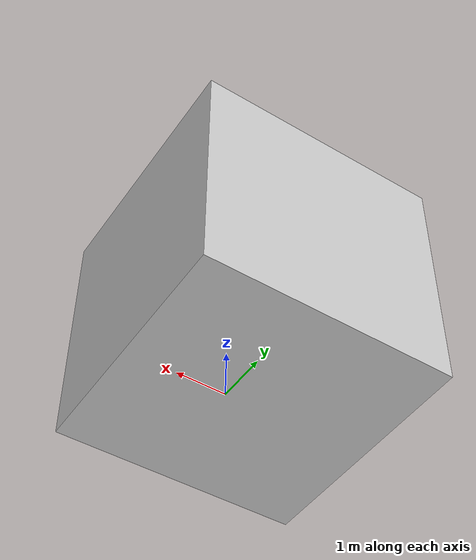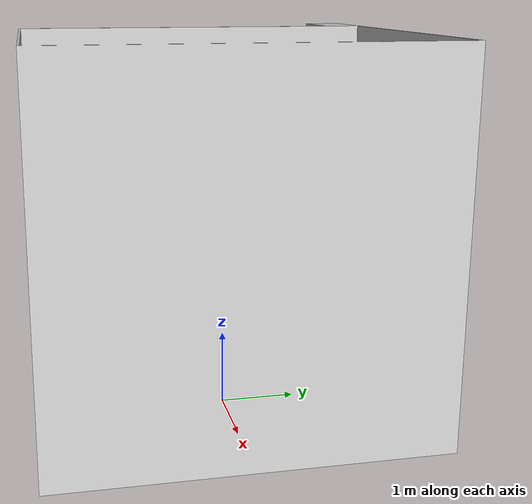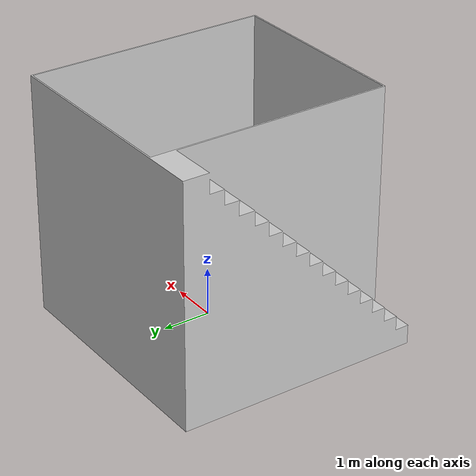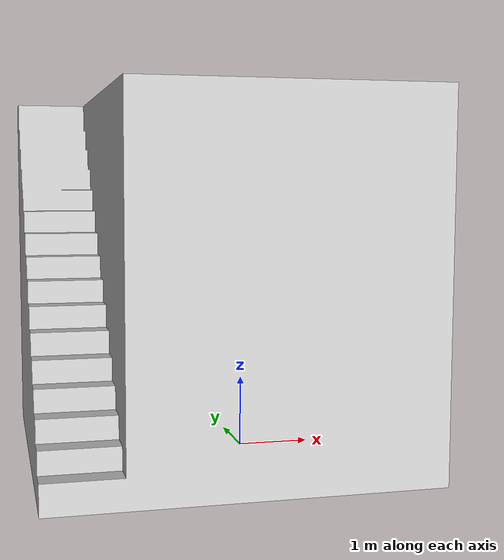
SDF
<?xml version="1.0"?>
<sdf version="1.9">
  <model name="watertank">
    <static>1</static>
    <link name="tank_link">
      <pose>0 0 0 0 0 0</pose>
      <inertial>
        <mass>1000</mass>
        <inertia>
          <ixx>1000</ixx>
          <ixy>0</ixy>
          <ixz>0</ixz>
          <iyy>1000</iyy>
          <iyz>0</iyz>
          <izz>1000</izz>
        </inertia>
      </inertial>
      <visual name="tank_visual">
        <geometry>
          <mesh>
            <uri>meshes/watertank.stl</uri>
            <scale>0.001 0.001 0.001</scale>
          </mesh>
        </geometry>
        <material>
          <ambient>0.8 0.8 0.8 1</ambient>
          <diffuse>0.8 0.8 0.8 1</diffuse>
          <specular>0.2 0.2 0.2 1</specular>
          <emissive>0 0 0 1</emissive>
        </material>
        <cast_shadows>true</cast_shadows>
      </visual>
      <collision name="tank_collision">
        <geometry>
          <mesh>
            <uri>meshes/watertank.stl</uri>
            <scale>0.001 0.001 0.001</scale>
          </mesh>
        </geometry>
        <surface>
          <contact>
            <ode>
              <kp>1e9</kp>
              <kd>1e3</kd>
              <max_vel>0.1</max_vel>
              <min_depth>0.001</min_depth>
            </ode>
          </contact>
        </surface>
      </collision>
    </link>
  </model>
</sdf>
